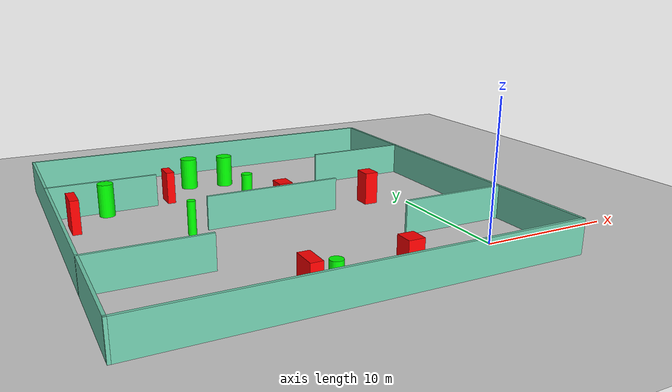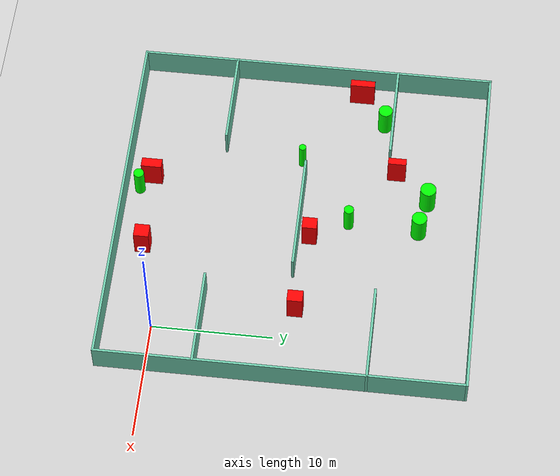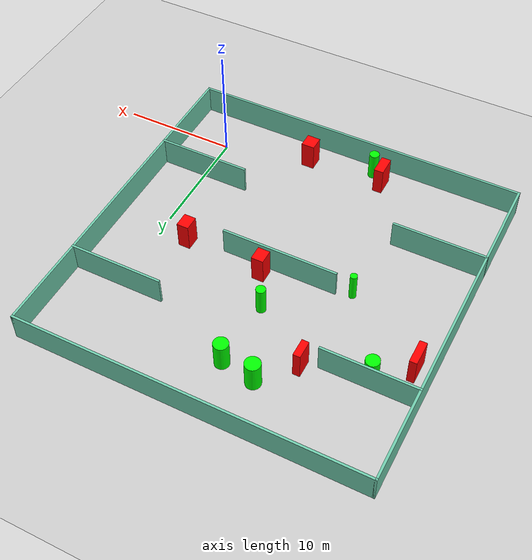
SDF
<sdf version="1.7">
 <world name="default">
  <light name="sun" type="directional">
   <pose>0 0 10 0 -0 0</pose>
   <diffuse>0.8 0.8 0.8 1</diffuse>
   <specular>0.2 0.2 0.2 1</specular>
   <attenuation>
    <range>1000</range>
    <constant>0.9</constant>
    <linear>0.01</linear>
    <quadratic>0.001</quadratic>
   </attenuation>
   <direction>-0.5 0.1 -0.9</direction>
   <spot><inner_angle>0</inner_angle><outer_angle>0</outer_angle><falloff>0</falloff></spot>
  </light>
  <model name="ground_plane">
   <static>1</static>
   <link name="link">
    <collision name="collision">
     <geometry><plane><normal>0 0 1</normal><size>100 100</size></plane></geometry>
     <surface>
      <contact><collide_bitmask>65535</collide_bitmask></contact>
      <friction><ode><mu>100</mu><mu2>50</mu2></ode></friction>
     </surface>
    </collision>
    <visual name="visual">
     <cast_shadows>0</cast_shadows>
     <geometry><plane><normal>0 0 1</normal><size>100 100</size></plane></geometry>
     <material>
      <script><uri>file://media/materials/scripts/gazebo.material</uri><name>Gazebo/Grey</name></script>
     </material>
    </visual>
   </link>
  </model>
  <gravity>0 0 -9.8</gravity>
  <magnetic_field>6e-06 2.3e-05 -4.2e-05</magnetic_field>
  <atmosphere type="adiabatic"/>
  <physics type="ode">
   <max_step_size>0.001</max_step_size>
   <real_time_factor>1</real_time_factor>
   <real_time_update_rate>1000</real_time_update_rate>
  </physics>
  <scene><ambient>0.4 0.4 0.4 1</ambient><background>0.7 0.7 0.7 1</background><shadows>1</shadows></scene>
  <spherical_coordinates>
   <surface_model>EARTH_WGS84</surface_model>
   <latitude_deg>0</latitude_deg>
   <longitude_deg>0</longitude_deg>
   <elevation>0</elevation>
   <heading_deg>0</heading_deg>
  </spherical_coordinates>
  <model name="my_base_walls">
   <link name="Wall_10">
    <collision name="Wall_10_Collision">
     <geometry><box><size>8.2 0.2 2.5</size></box></geometry>
     <pose>0 0 1.25 0 -0 0</pose>
    </collision>
    <visual name="Wall_10_Visual">
     <pose>0 0 1.25 0 -0 0</pose>
     <geometry><box><size>8.2 0.2 2.5</size></box></geometry>
     <material>
      <script><uri>file://media/materials/scripts/gazebo.material</uri><name>Gazebo/Grey</name></script>
      <ambient>0.435294 0.796078 0.67451 1</ambient>
     </material>
     <meta><layer>0</layer></meta>
    </visual>
    <pose>-11 -7 0 0 -0 0</pose>
   </link>
   <link name="Wall_12">
    <collision name="Wall_12_Collision">
     <geometry><box><size>8.2 0.2 2.5</size></box></geometry>
     <pose>0 0 1.25 0 -0 0</pose>
    </collision>
    <visual name="Wall_12_Visual">
     <pose>0 0 1.25 0 -0 0</pose>
     <geometry><box><size>8.2 0.2 2.5</size></box></geometry>
     <material>
      <script><uri>file://media/materials/scripts/gazebo.material</uri><name>Gazebo/Grey</name></script>
      <ambient>0.435294 0.796078 0.67451 1</ambient>
     </material>
     <meta><layer>0</layer></meta>
    </visual>
    <pose>-11 7 0 0 -0 0</pose>
   </link>
   <link name="Wall_14">
    <collision name="Wall_14_Collision">
     <geometry><box><size>8.2 0.2 2.5</size></box></geometry>
     <pose>0 0 1.25 0 -0 0</pose>
    </collision>
    <visual name="Wall_14_Visual">
     <pose>0 0 1.25 0 -0 0</pose>
     <geometry><box><size>8.2 0.2 2.5</size></box></geometry>
     <material>
      <script><uri>file://media/materials/scripts/gazebo.material</uri><name>Gazebo/Grey</name></script>
      <ambient>0.435294 0.796078 0.67451 1</ambient>
     </material>
     <meta><layer>0</layer></meta>
    </visual>
    <pose>11 7 0 0 -0 3.14159</pose>
   </link>
   <link name="Wall_16">
    <collision name="Wall_16_Collision">
     <geometry><box><size>10.2 0.2 2.5</size></box></geometry>
     <pose>0 0 1.25 0 -0 0</pose>
    </collision>
    <visual name="Wall_16_Visual">
     <pose>0 0 1.25 0 -0 0</pose>
     <geometry><box><size>10.2 0.2 2.5</size></box></geometry>
     <material>
      <script><uri>file://media/materials/scripts/gazebo.material</uri><name>Gazebo/Grey</name></script>
      <ambient>0.435294 0.796078 0.67451 1</ambient>
     </material>
     <meta><layer>0</layer></meta>
    </visual>
    <pose>0 0 0 0 -0 3.14159</pose>
   </link>
   <link name="Wall_2">
    <collision name="Wall_2_Collision">
     <geometry><box><size>30.2 0.2 2.5</size></box></geometry>
     <pose>0 0 1.25 0 -0 0</pose>
    </collision>
    <visual name="Wall_2_Visual">
     <pose>0 0 1.25 0 -0 0</pose>
     <geometry><box><size>30.2 0.2 2.5</size></box></geometry>
     <material>
      <script><uri>file://media/materials/scripts/gazebo.material</uri><name>Gazebo/Grey</name></script>
      <ambient>0.435294 0.796078 0.67451 1</ambient>
     </material>
     <meta><layer>0</layer></meta>
    </visual>
    <pose>0 -15 0 0 -0 3.14159</pose>
   </link>
   <link name="Wall_3">
    <collision name="Wall_3_Collision">
     <geometry><box><size>30.2 0.2 2.5</size></box></geometry>
     <pose>0 0 1.25 0 -0 0</pose>
    </collision>
    <visual name="Wall_3_Visual">
     <pose>0 0 1.25 0 -0 0</pose>
     <geometry><box><size>30.2 0.2 2.5</size></box></geometry>
     <material>
      <script><uri>file://media/materials/scripts/gazebo.material</uri><name>Gazebo/Grey</name></script>
      <ambient>0.435294 0.796078 0.67451 1</ambient>
     </material>
     <meta><layer>0</layer></meta>
    </visual>
    <pose>-15 0 0 0 -0 1.5708</pose>
   </link>
   <link name="Wall_4">
    <collision name="Wall_4_Collision">
     <geometry><box><size>30.2 0.2 2.5</size></box></geometry>
     <pose>0 0 1.25 0 -0 0</pose>
    </collision>
    <visual name="Wall_4_Visual">
     <pose>0 0 1.25 0 -0 0</pose>
     <geometry><box><size>30.2 0.2 2.5</size></box></geometry>
     <material>
      <script><uri>file://media/materials/scripts/gazebo.material</uri><name>Gazebo/Grey</name></script>
      <ambient>0.435294 0.796078 0.67451 1</ambient>
     </material>
     <meta><layer>0</layer></meta>
    </visual>
    <pose>0 15 0 0 -0 0</pose>
   </link>
   <link name="Wall_6">
    <collision name="Wall_6_Collision">
     <geometry><box><size>30.2 0.2 2.5</size></box></geometry>
     <pose>0 0 1.25 0 -0 0</pose>
    </collision>
    <visual name="Wall_6_Visual">
     <pose>0 0 1.25 0 -0 0</pose>
     <geometry><box><size>30.2 0.2 2.5</size></box></geometry>
     <material>
      <script><uri>file://media/materials/scripts/gazebo.material</uri><name>Gazebo/Grey</name></script>
      <ambient>0.435294 0.796078 0.67451 1</ambient>
     </material>
     <meta><layer>0</layer></meta>
    </visual>
    <pose>15 0 0 0 -0 1.5708</pose>
   </link>
   <link name="Wall_8">
    <collision name="Wall_8_Collision">
     <geometry><box><size>8.2 0.2 2.5</size></box></geometry>
     <pose>0 0 1.25 0 -0 0</pose>
    </collision>
    <visual name="Wall_8_Visual">
     <pose>0 0 1.25 0 -0 0</pose>
     <geometry><box><size>8.2 0.2 2.5</size></box></geometry>
     <material>
      <script><uri>file://media/materials/scripts/gazebo.material</uri><name>Gazebo/Grey</name></script>
      <ambient>0.435294 0.796078 0.67451 1</ambient>
     </material>
     <meta><layer>0</layer></meta>
    </visual>
    <pose>11 -7 0 0 -0 3.14159</pose>
   </link>
   <static>1</static>
   <pose>-11 11 0 0 -0 0</pose>
  </model>
  <model name="cylinder1">
   <static>1</static>
   <link name="link">
    <inertial>
     <mass>1</mass>
     <inertia><ixx>0.5</ixx><ixy>0</ixy><ixz>0</ixz><iyy>0.5</iyy><iyz>0</iyz><izz>1</izz></inertia>
    </inertial>
    <collision name="collision">
     <geometry><cylinder><radius>0.5861953316783423</radius><length>2.5</length></cylinder></geometry>
    </collision>
    <visual name="visual">
     <geometry><cylinder><radius>0.5861953316783423</radius><length>2.5</length></cylinder></geometry>
     <material>
      <ambient>0 1 0 1</ambient>
      <diffuse>0 1 0 1</diffuse>
      <specular>0.1 0.1 0.1 1</specular>
      <emissive>0 0 0 0</emissive>
     </material>
    </visual>
   </link>
   <pose>-21.91362075543693 17.272328256910818 1.25 0 0 0</pose>
  </model>
  <model name="cylinder2">
   <static>1</static>
   <link name="link">
    <inertial>
     <mass>1</mass>
     <inertia><ixx>0.5</ixx><ixy>0</ixy><ixz>0</ixz><iyy>0.5</iyy><iyz>0</iyz><izz>1</izz></inertia>
    </inertial>
    <collision name="collision">
     <geometry><cylinder><radius>0.4140131479167024</radius><length>2.5</length></cylinder></geometry>
    </collision>
    <visual name="visual">
     <geometry><cylinder><radius>0.4140131479167024</radius><length>2.5</length></cylinder></geometry>
     <material>
      <ambient>0 1 0 1</ambient>
      <diffuse>0 1 0 1</diffuse>
      <specular>0.1 0.1 0.1 1</specular>
      <emissive>0 0 0 0</emissive>
     </material>
    </visual>
   </link>
   <pose>-11.512737588151474 15.104917051013821 1.25 0 0 0</pose>
  </model>
  <model name="cylinder3">
   <static>1</static>
   <link name="link">
    <inertial>
     <mass>1</mass>
     <inertia><ixx>0.5</ixx><ixy>0</ixy><ixz>0</ixz><iyy>0.5</iyy><iyz>0</iyz><izz>1</izz></inertia>
    </inertial>
    <collision name="collision">
     <geometry><cylinder><radius>0.4329309379490671</radius><length>2.5</length></cylinder></geometry>
    </collision>
    <visual name="visual">
     <geometry><cylinder><radius>0.4329309379490671</radius><length>2.5</length></cylinder></geometry>
     <material>
      <ambient>0 1 0 1</ambient>
      <diffuse>0 1 0 1</diffuse>
      <specular>0.1 0.1 0.1 1</specular>
      <emissive>0 0 0 0</emissive>
     </material>
    </visual>
   </link>
   <pose>-13.271606167436673 -2.837385344935426 1.25 0 0 0</pose>
  </model>
  <model name="cylinder4">
   <static>1</static>
   <link name="link">
    <inertial>
     <mass>1</mass>
     <inertia><ixx>0.5</ixx><ixy>0</ixy><ixz>0</ixz><iyy>0.5</iyy><iyz>0</iyz><izz>1</izz></inertia>
    </inertial>
    <collision name="collision">
     <geometry><cylinder><radius>0.6579343908309357</radius><length>2.5</length></cylinder></geometry>
    </collision>
    <visual name="visual">
     <geometry><cylinder><radius>0.6579343908309357</radius><length>2.5</length></cylinder></geometry>
     <material>
      <ambient>0 1 0 1</ambient>
      <diffuse>0 1 0 1</diffuse>
      <specular>0.1 0.1 0.1 1</specular>
      <emissive>0 0 0 0</emissive>
     </material>
    </visual>
   </link>
   <pose>-14.230796856323103 21.527753608299804 1.25 0 0 0</pose>
  </model>
  <model name="cylinder5">
   <static>1</static>
   <link name="link">
    <inertial>
     <mass>1</mass>
     <inertia><ixx>0.5</ixx><ixy>0</ixy><ixz>0</ixz><iyy>0.5</iyy><iyz>0</iyz><izz>1</izz></inertia>
    </inertial>
    <collision name="collision">
     <geometry><cylinder><radius>0.30092556209395316</radius><length>2.5</length></cylinder></geometry>
    </collision>
    <visual name="visual">
     <geometry><cylinder><radius>0.30092556209395316</radius><length>2.5</length></cylinder></geometry>
     <material>
      <ambient>0 1 0 1</ambient>
      <diffuse>0 1 0 1</diffuse>
      <specular>0.1 0.1 0.1 1</specular>
      <emissive>0 0 0 0</emissive>
     </material>
    </visual>
   </link>
   <pose>-17.375726698695857 10.59677229136175 1.25 0 0 0</pose>
  </model>
  <model name="cylinder6">
   <static>1</static>
   <link name="link">
    <inertial>
     <mass>1</mass>
     <inertia><ixx>0.5</ixx><ixy>0</ixy><ixz>0</ixz><iyy>0.5</iyy><iyz>0</iyz><izz>1</izz></inertia>
    </inertial>
    <collision name="collision">
     <geometry><cylinder><radius>0.6283203244623181</radius><length>2.5</length></cylinder></geometry>
    </collision>
    <visual name="visual">
     <geometry><cylinder><radius>0.6283203244623181</radius><length>2.5</length></cylinder></geometry>
     <material>
      <ambient>0 1 0 1</ambient>
      <diffuse>0 1 0 1</diffuse>
      <specular>0.1 0.1 0.1 1</specular>
      <emissive>0 0 0 0</emissive>
     </material>
    </visual>
   </link>
   <pose>-11.285866227666334 21.01661408763253 1.25 0 0 0</pose>
  </model>
  <model name="box1">
   <static>1</static>
   <link name="link">
    <inertial>
     <mass>1</mass>
     <inertia><ixx>0.083</ixx><ixy>0</ixy><ixz>0</ixz><iyy>0.083</iyy><iyz>0</iyz><izz>0.083</izz></inertia>
    </inertial>
    <collision name="collision">
     <geometry><box><size>0.830493943347437 1.7240670770028506 2.5</size></box></geometry>
    </collision>
    <visual name="visual">
     <geometry><box><size>0.830493943347437 1.7240670770028506 2.5</size></box></geometry>
     <material>
      <ambient>1 0 0 1</ambient>
      <diffuse>1 0 0 1</diffuse>
      <specular>0.1 0.1 0.1 1</specular>
      <emissive>0 0 0 0</emissive>
     </material>
    </visual>
    <sensor name="my_contact" type="contact">
     <contact><collision>box_collision</collision><topic>__default_topic__</topic></contact>
    </sensor>
   </link>
   <pose>-14.430824579417333 -1.9088039829443284 1.25 0 0 0</pose>
  </model>
  <model name="box2">
   <static>1</static>
   <link name="link">
    <inertial>
     <mass>1</mass>
     <inertia><ixx>0.083</ixx><ixy>0</ixy><ixz>0</ixz><iyy>0.083</iyy><iyz>0</iyz><izz>0.083</izz></inertia>
    </inertial>
    <collision name="collision">
     <geometry><box><size>0.6140212875124108 1.5434848729653603 2.5</size></box></geometry>
    </collision>
    <visual name="visual">
     <geometry><box><size>0.6140212875124108 1.5434848729653603 2.5</size></box></geometry>
     <material>
      <ambient>1 0 0 1</ambient>
      <diffuse>1 0 0 1</diffuse>
      <specular>0.1 0.1 0.1 1</specular>
      <emissive>0 0 0 0</emissive>
     </material>
    </visual>
    <sensor name="my_contact" type="contact">
     <contact><collision>box_collision</collision><topic>__default_topic__</topic></contact>
    </sensor>
   </link>
   <pose>-16.77505252814502 18.70914856374448 1.25 0 0 0</pose>
  </model>
  <model name="box3">
   <static>1</static>
   <link name="link">
    <inertial>
     <mass>1</mass>
     <inertia><ixx>0.083</ixx><ixy>0</ixy><ixz>0</ixz><iyy>0.083</iyy><iyz>0</iyz><izz>0.083</izz></inertia>
    </inertial>
    <collision name="collision">
     <geometry><box><size>1.1581873650819354 1.2627876563538378 2.5</size></box></geometry>
    </collision>
    <visual name="visual">
     <geometry><box><size>1.1581873650819354 1.2627876563538378 2.5</size></box></geometry>
     <material>
      <ambient>1 0 0 1</ambient>
      <diffuse>1 0 0 1</diffuse>
      <specular>0.1 0.1 0.1 1</specular>
      <emissive>0 0 0 0</emissive>
     </material>
    </visual>
    <sensor name="my_contact" type="contact">
     <contact><collision>box_collision</collision><topic>__default_topic__</topic></contact>
    </sensor>
   </link>
   <pose>-7.620444756220598 -1.7550028483502746 1.25 0 0 0</pose>
  </model>
  <model name="box4">
   <static>1</static>
   <link name="link">
    <inertial>
     <mass>1</mass>
     <inertia><ixx>0.083</ixx><ixy>0</ixy><ixz>0</ixz><iyy>0.083</iyy><iyz>0</iyz><izz>0.083</izz></inertia>
    </inertial>
    <collision name="collision">
     <geometry><box><size>1.041690845825091 1.2808161125045963 2.5</size></box></geometry>
    </collision>
    <visual name="visual">
     <geometry><box><size>1.041690845825091 1.2808161125045963 2.5</size></box></geometry>
     <material>
      <ambient>1 0 0 1</ambient>
      <diffuse>1 0 0 1</diffuse>
      <specular>0.1 0.1 0.1 1</specular>
      <emissive>0 0 0 0</emissive>
     </material>
    </visual>
    <sensor name="my_contact" type="contact">
     <contact><collision>box_collision</collision><topic>__default_topic__</topic></contact>
    </sensor>
   </link>
   <pose>-2.7195022286310433 11.553830962566362 1.25 0 0 0</pose>
  </model>
  <model name="box5">
   <static>1</static>
   <link name="link">
    <inertial>
     <mass>1</mass>
     <inertia><ixx>0.083</ixx><ixy>0</ixy><ixz>0</ixz><iyy>0.083</iyy><iyz>0</iyz><izz>0.083</izz></inertia>
    </inertial>
    <collision name="collision">
     <geometry><box><size>1.0494651597464464 1.2410907368669666 2.5</size></box></geometry>
    </collision>
    <visual name="visual">
     <geometry><box><size>1.0494651597464464 1.2410907368669666 2.5</size></box></geometry>
     <material>
      <ambient>1 0 0 1</ambient>
      <diffuse>1 0 0 1</diffuse>
      <specular>0.1 0.1 0.1 1</specular>
      <emissive>0 0 0 0</emissive>
     </material>
    </visual>
    <sensor name="my_contact" type="contact">
     <contact><collision>box_collision</collision><topic>__default_topic__</topic></contact>
    </sensor>
   </link>
   <pose>-9.849627519722532 11.990911689774087 1.25 0 0 0</pose>
  </model>
  <model name="box6">
   <static>1</static>
   <link name="link">
    <inertial>
     <mass>1</mass>
     <inertia><ixx>0.083</ixx><ixy>0</ixy><ixz>0</ixz><iyy>0.083</iyy><iyz>0</iyz><izz>0.083</izz></inertia>
    </inertial>
    <collision name="collision">
     <geometry><box><size>0.6229956214544063 2.088365482100113 2.5</size></box></geometry>
    </collision>
    <visual name="visual">
     <geometry><box><size>0.6229956214544063 2.088365482100113 2.5</size></box></geometry>
     <material>
      <ambient>1 0 0 1</ambient>
      <diffuse>1 0 0 1</diffuse>
      <specular>0.1 0.1 0.1 1</specular>
      <emissive>0 0 0 0</emissive>
     </material>
    </visual>
    <sensor name="my_contact" type="contact">
     <contact><collision>box_collision</collision><topic>__default_topic__</topic></contact>
    </sensor>
   </link>
   <pose>-24.6043832292389 15.07342861151421 1.25 0 0 0</pose>
  </model>
 </world>
</sdf>
